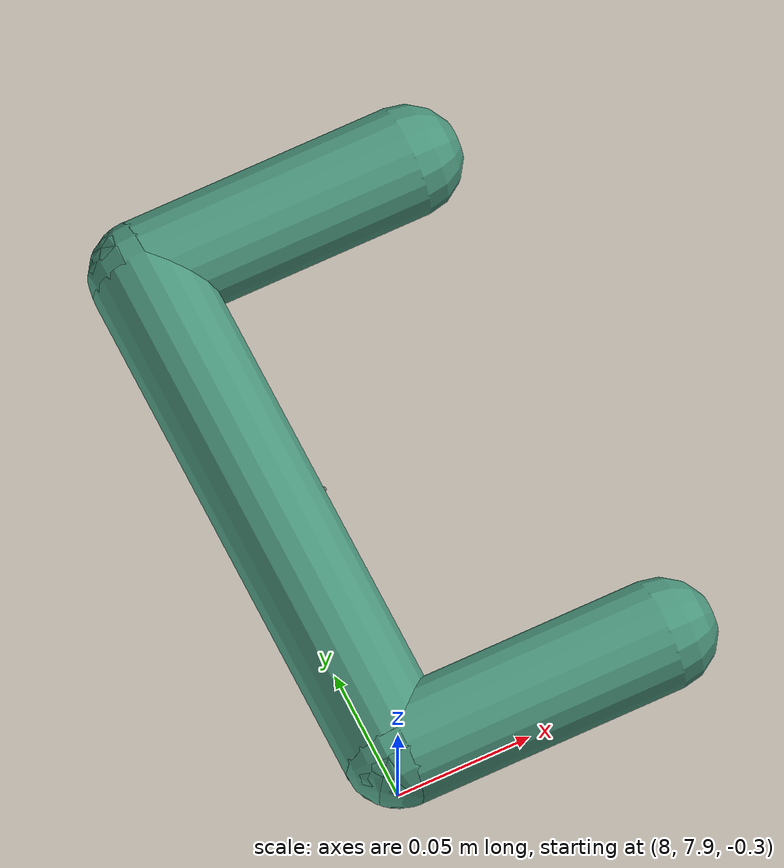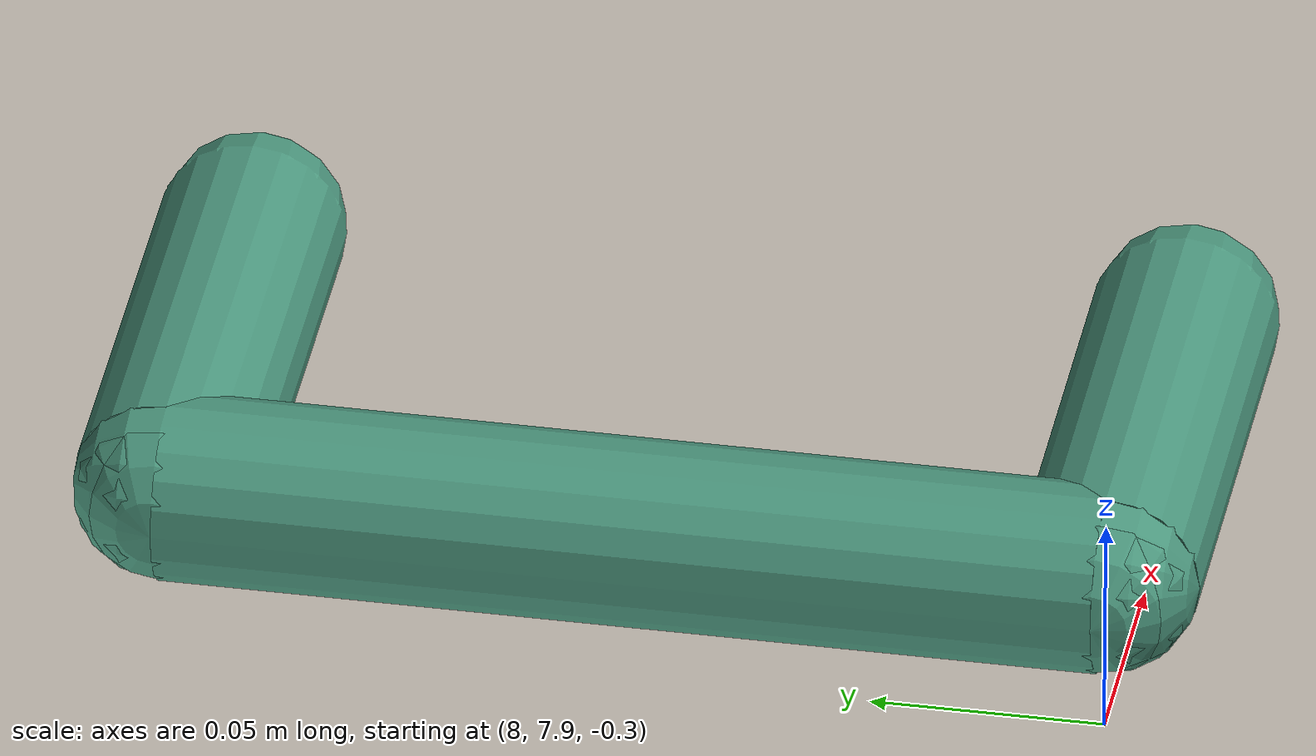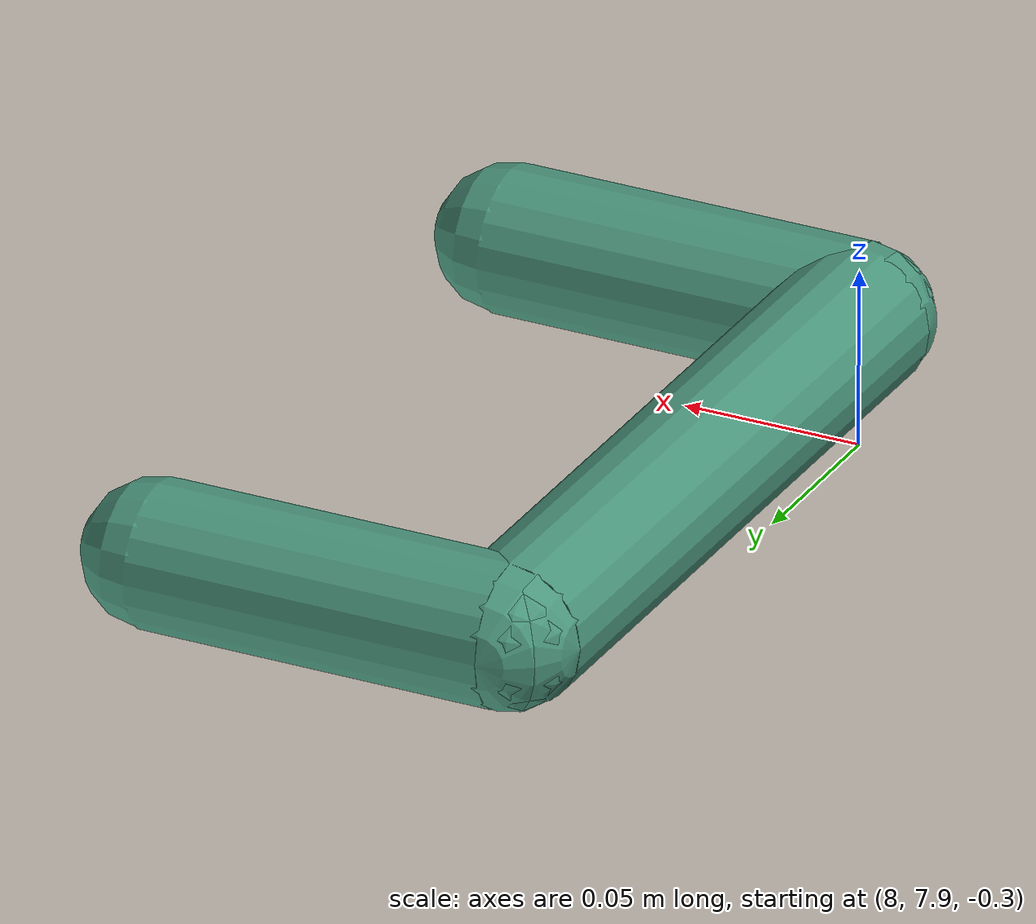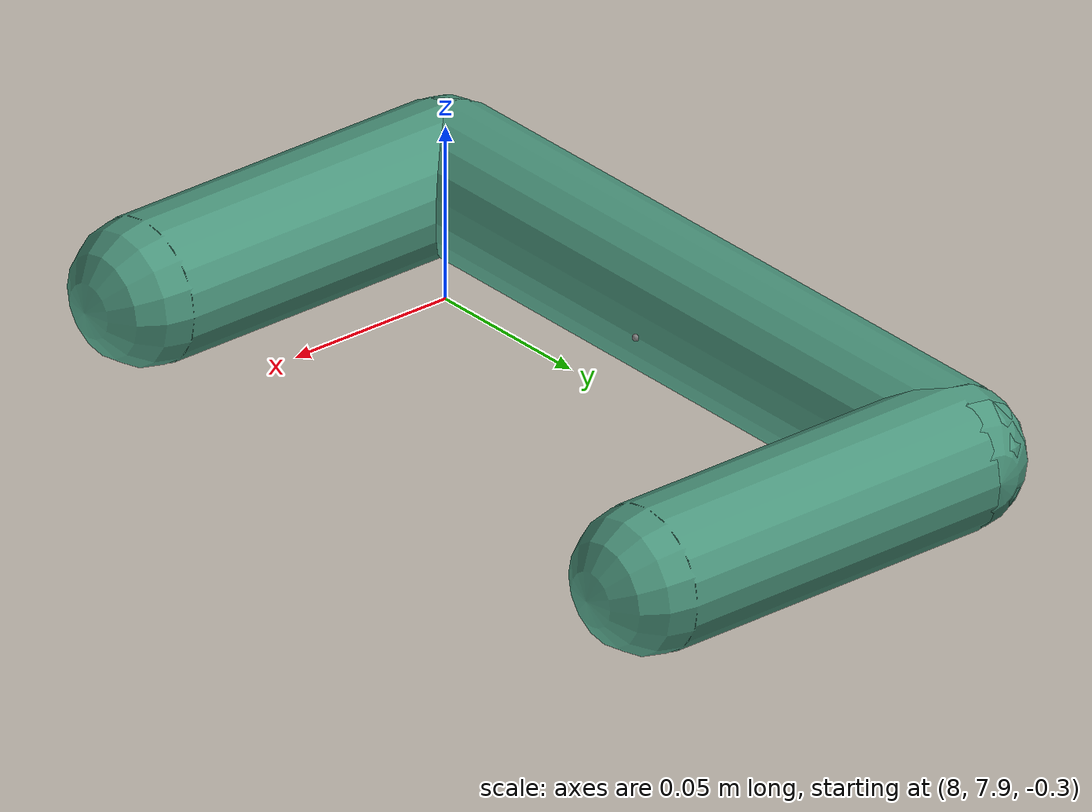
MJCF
<mujoco model="arm3d">
    <compiler angle="radian" coordinate="local" inertiafromgeom="true" meshdir="meshes"/>
    <option gravity="0 0 0" integrator="Euler" iterations="20" timestep="0.01" />
    <asset>
        <texture name="table_texture" type="2d" file="pic_010.png"/>
        <material name="table_mat_texture" texture="table_texture" texuniform="true"/>
        <material name="table_mat" specular="0" shininess="0.5" reflectance="0" rgba="0.93 0.93 0.93 1"/>
    </asset>

    <default>
        <joint armature="0.04" damping="1" limited="true" />
        <geom conaffinity="0" condim="1" contype="0" density="10" friction=".8 .1 .1" margin="0.002" />
    </default>

    <worldbody>
        <light diffuse=".5 .5 .5" dir="0 0 -1" pos="0 0 3" />

        <geom conaffinity="1" contype="1" condim="1" name="table" pos="0 0.5 -0.325" size="10 10 0.1" type="plane" material="table_mat_texture"/>

        <body name="wrist base" pos="8. 8. -0.2630">
            <joint axis="1 0 0" damping="0.5" name="wrist_slidex" pos="0 0 0" range="-10.3213 10.3" type="slide" />
            <joint axis="0 1 0" damping="0.5" name="wrist_slidey" pos="0 0 0" range="-10.3213 10.3" type="slide" />
            <joint axis="0 0 1" damping="0.5" name="wrist_hinge" pos="0 0 0" range="-10.3213 10.3" type="hinge" />
          <body name="tips_arm" pos="0 0 0">
            <geom conaffinity="1" contype="1" condim="1" name="tip_arml" pos="0.1 -0.1 0." size="0.01" rgba=".3 .6 .5 1" type="sphere" />
            <geom conaffinity="1" contype="1" condim="1" name="tip_armr" pos="0.1 0.1 0." size="0.01" rgba=".3 .6 .5 1" type="sphere" />
            <site name="arm" pos="0.02 0 0" size="0.001" />
          </body>
          <geom conaffinity="1" contype="1" condim="1" fromto="0 -0.1 0. 0.0 +0.1 0" size="0.02" rgba=".3 .6 .5 1" type="capsule" />
          <geom conaffinity="1" contype="1" condim="1" fromto="0 -0.1 0. 0.1 -0.1 0" size="0.02" rgba=".3 .6 .5 1" type="capsule" />
          <geom conaffinity="1" contype="1" condim="1" fromto="0 +0.1 0. 0.1 +0.1 0." size="0.02" rgba=".3 .6 .5 1" type="capsule" />
        </body>

        <body name="obj1" pos="0.2 -0. -0.325">
            <joint axis="1 0 0" damping="1.5" name="obj1_slidex" pos="0 0 0.05" range="-10.3213 10.3" type="slide" />
            <joint axis="0 1 0" damping="1.5" name="obj1_slidey" pos="0 0 0.05" range="-10.3213 10.3" type="slide" />
            <geom conaffinity="1" contype="1" pos="0 0 0.05" density="0.0005" size="0.03 0.03 0.05" rgba="1 0. 0.3 1" type="box" />
        </body>

    </worldbody>

    <actuator>
        <motor ctrllimited="true" ctrlrange="-2.0 2.0" gear="1000.0" joint="obj1_slidex" />
        <motor ctrllimited="true" ctrlrange="-2.0 2.0" gear="1000.0" joint="obj1_slidey" />
        <motor ctrllimited="true" ctrlrange="-2.0 2.0" joint="wrist_hinge" />
    </actuator>

</mujoco>
